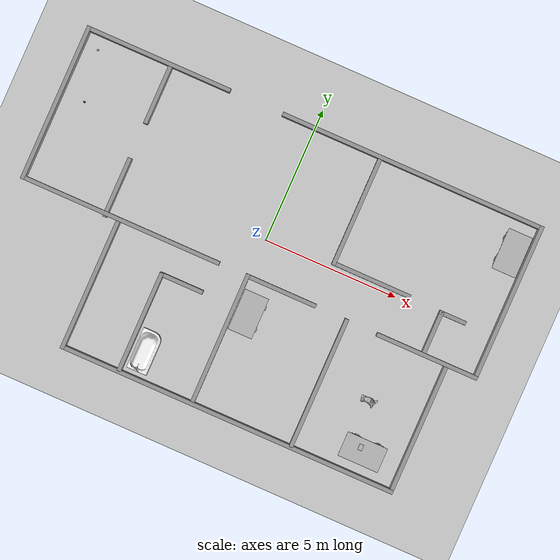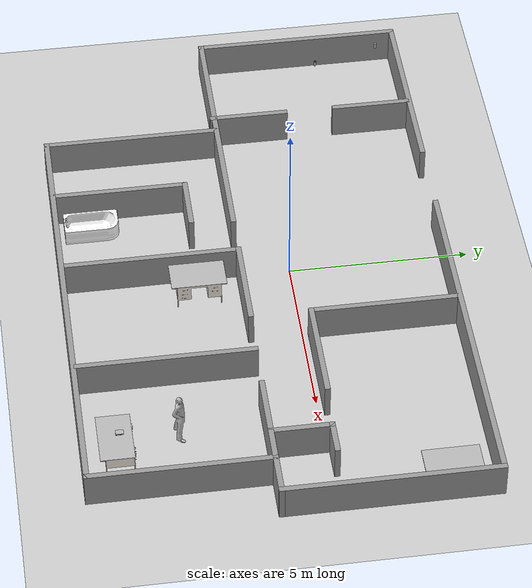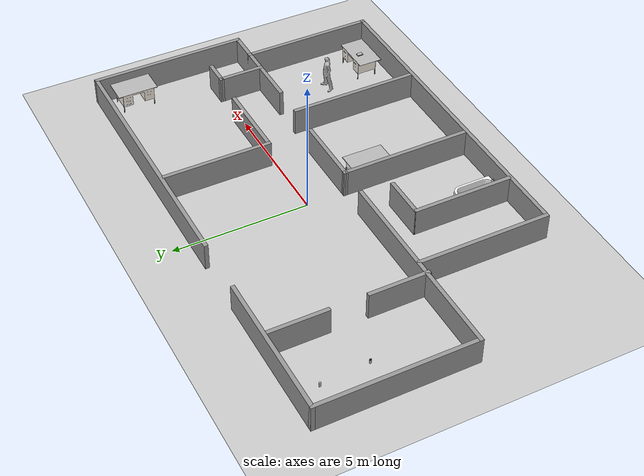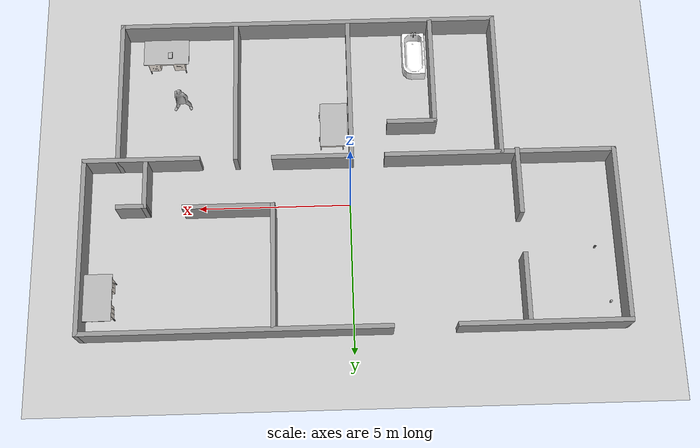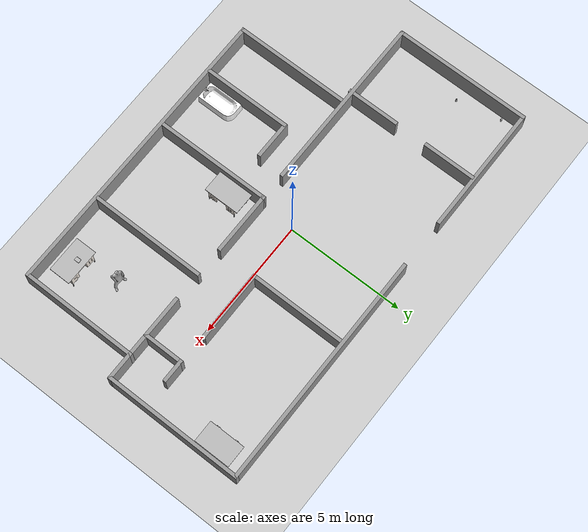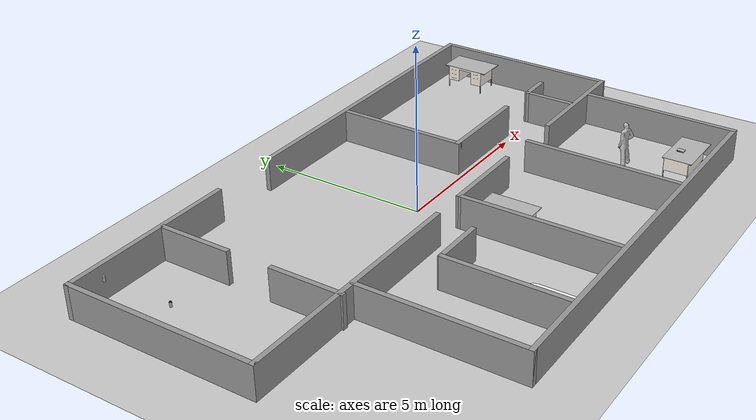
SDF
<sdf version="1.4">
 <world name="default">
  <include><uri>model://ground_plane</uri></include>
  <include><uri>model://sun</uri></include>
  <include><uri>model://home</uri><name>walls</name><pose>0 -1 0 0 0 0</pose><static>1</static></include>
  <include>
   <uri>model://Tub</uri>
   <name>tub1</name>
   <pose>-2.68 -6.05 0 0 0 -1.57</pose>
   <static>1</static>
  </include>
  <include>
   <uri>model://desk</uri>
   <name>desk1</name>
   <pose>8.00 3.06 0 0 0 -1.57</pose>
   <static>1</static>
  </include>
  <include>
   <uri>model://desk</uri>
   <name>desk2</name>
   <pose>0.59 -2.59 0 0 0 1.57</pose>
   <static>1</static>
  </include>
  <include>
   <uri>model://desk</uri>
   <name>desk3</name>
   <pose>6.10 -5.33 0 0 0 3.14159</pose>
   <static>1</static>
  </include>
  <include>
   <uri>model://human</uri>
   <name>jamie</name>
   <pose>5.6 -3.7 0 0 0 1.57</pose>
   <static>1</static>
  </include>
  <include><uri>model://book</uri><name>book1</name><pose>5.99 -5.30 0.74 0 0 0</pose></include>
  <include><uri>model://beer</uri><name>beer1</name><pose>-8.060 3.715 0.940 0 0 0</pose></include>
  <include><uri>model://bottle</uri><name>bottle1</name><pose>-7.769 1.867 0.710 0 0 0</pose></include>
 </world>
</sdf>

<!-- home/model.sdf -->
<sdf version='1.6'>
  <model name='home'>
    <pose frame=''>-0.127498 -0.471945 0 0 -0 0</pose>
    <link name='Wall_0'>
      <collision name='Wall_0_Collision'>
        <geometry>
          <box>
            <size>5.85 0.15 1.01</size>
          </box>
        </geometry>
        <pose frame=''>0 0 0.505 0 -0 0</pose>
      </collision>
      <visual name='Wall_0_Visual'>
        <pose frame=''>0 0 0.505 0 -0 0</pose>
        <geometry>
          <box>
            <size>5.85 0.15 1.01</size>
          </box>
        </geometry>
        <material>
          <script>
            <uri>file://media/materials/scripts/gazebo.material</uri>
            <name>Gazebo/Grey</name>
          </script>
          <ambient>1 1 1 1</ambient>
        </material>
      </visual>
      <pose frame=''>-8.6775 2.44195 0 0 0 -1.5708</pose>
    </link>
    <link name='Wall_10'>
      <collision name='Wall_10_Collision'>
        <geometry>
          <box>
            <size>3.75 0.15 1.01</size>
          </box>
        </geometry>
        <pose frame=''>0 0 0.505 0 -0 0</pose>
      </collision>
      <visual name='Wall_10_Visual'>
        <pose frame=''>0 0 0.505 0 -0 0</pose>
        <geometry>
          <box>
            <size>3.75 0.15 1.01</size>
          </box>
        </geometry>
        <material>
          <script>
            <uri>file://media/materials/scripts/gazebo.material</uri>
            <name>Gazebo/Grey</name>
          </script>
          <ambient>1 1 1 1</ambient>
        </material>
      </visual>
      <pose frame=''>-2.85846 -3.39925 0 0 -0 1.5708</pose>
    </link>
    <link name='Wall_11'>
      <collision name='Wall_11_Collision'>
        <geometry>
          <box>
            <size>1.65 0.15 1.01</size>
          </box>
        </geometry>
        <pose frame=''>0 0 0.505 0 -0 0</pose>
      </collision>
      <visual name='Wall_11_Visual'>
        <pose frame=''>0 0 0.505 0 -0 0</pose>
        <geometry>
          <box>
            <size>1.65 0.15 1.01</size>
          </box>
        </geometry>
        <material>
          <script>
            <uri>file://media/materials/scripts/gazebo.material</uri>
            <name>Gazebo/Grey</name>
          </script>
          <ambient>1 1 1 1</ambient>
        </material>
      </visual>
      <pose frame=''>-2.10 -1.57 0 0 -0 0</pose>
    </link>
    <link name='Wall_12'>
      <collision name='Wall_12_Collision'>
        <geometry>
          <box>
            <size>4.88874 0.15 1.01</size>
          </box>
        </geometry>
        <pose frame=''>0 0 0.505 0 -0 0</pose>
      </collision>
      <visual name='Wall_12_Visual'>
        <pose frame=''>0 0 0.505 0 -0 0</pose>
        <geometry>
          <box>
            <size>4.88874 0.15 1.01</size>
          </box>
        </geometry>
        <material>
          <script>
            <uri>file://media/materials/scripts/gazebo.material</uri>
            <name>Gazebo/Grey</name>
          </script>
          <ambient>1 1 1 1</ambient>
        </material>
      </visual>
      <pose frame=''>-0.066276 -2.77742 0 0 -0 1.57342</pose>
    </link>
    <link name='Wall_16'>
      <collision name='Wall_16_Collision'>
        <geometry>
          <box>
            <size>4.9 0.15 1.01</size>
          </box>
        </geometry>
        <pose frame=''>0 0 0.505 0 -0 0</pose>
      </collision>
      <visual name='Wall_16_Visual'>
        <pose frame=''>0 0 0.505 0 -0 0</pose>
        <geometry>
          <box>
            <size>4.9 0.15 1.01</size>
          </box>
        </geometry>
        <material>
          <script>
            <uri>file://media/materials/scripts/gazebo.material</uri>
            <name>Gazebo/Grey</name>
          </script>
          <ambient>1 1 1 1</ambient>
        </material>
      </visual>
      <pose frame=''>3.73529 -2.82425 0 0 -0 1.5708</pose>
    </link>
    <link name='Wall_18'>
      <collision name='Wall_18_Collision'>
        <geometry>
          <box>
            <size>3.85 0.15 1.01</size>
          </box>
        </geometry>
        <pose frame=''>0 0 0.505 0 -0 0</pose>
      </collision>
      <visual name='Wall_18_Visual'>
        <pose frame=''>0 0 0.505 0 -0 0</pose>
        <geometry>
          <box>
            <size>3.85 0.15 1.01</size>
          </box>
        </geometry>
        <material>
          <script>
            <uri>file://media/materials/scripts/gazebo.material</uri>
            <name>Gazebo/Grey</name>
          </script>
          <ambient>1 1 1 1</ambient>
        </material>
      </visual>
      <pose frame=''>6.82709 -0.44195 0 0 -0 0</pose>
    </link>
    <link name='Wall_2'>
      <collision name='Wall_2_Collision'>
        <geometry>
          <box>
            <size>7.6 0.15 1.01</size>
          </box>
        </geometry>
        <pose frame=''>0 0 0.505 0 -0 0</pose>
      </collision>
      <visual name='Wall_2_Visual'>
        <pose frame=''>0 0 0.505 0 -0 0</pose>
        <geometry>
          <box>
            <size>7.6 0.15 1.01</size>
          </box>
        </geometry>
        <material>
          <script>
            <uri>file://media/materials/scripts/gazebo.material</uri>
            <name>Gazebo/Grey</name>
          </script>
          <ambient>1 1 1 1</ambient>
        </material>
      </visual>
      <pose frame=''>-4.9525 -0.408055 0 0 -0 0</pose>
    </link>
    <link name='Wall_20'>
      <collision name='Wall_20_Collision'>
        <geometry>
          <box>
            <size>5.8839 0.15 1.01</size>
          </box>
        </geometry>
        <pose frame=''>0 0 0.505 0 -0 0</pose>
      </collision>
      <visual name='Wall_20_Visual'>
        <pose frame=''>0 0 0.505 0 -0 0</pose>
        <geometry>
          <box>
            <size>5.8839 0.15 1.01</size>
          </box>
        </geometry>
        <material>
          <script>
            <uri>file://media/materials/scripts/gazebo.material</uri>
            <name>Gazebo/Grey</name>
          </script>
          <ambient>1 1 1 1</ambient>
        </material>
      </visual>
      <pose frame=''>8.67729 2.425 0 0 -0 1.57072</pose>
    </link>
    <link name='Wall_22'>
      <collision name='Wall_22_Collision'>
        <geometry>
          <box>
            <size>10 0.15 1.01</size>
          </box>
        </geometry>
        <pose frame=''>0 0 0.505 0 -0 0</pose>
      </collision>
      <visual name='Wall_22_Visual'>
        <pose frame=''>0 0 0.505 0 -0 0</pose>
        <geometry>
          <box>
            <size>10 0.15 1.01</size>
          </box>
        </geometry>
        <material>
          <script>
            <uri>file://media/materials/scripts/gazebo.material</uri>
            <name>Gazebo/Grey</name>
          </script>
          <ambient>1 1 1 1</ambient>
        </material>
      </visual>
      <pose frame=''>3.7525 5.29195 0 0 -0 3.14159</pose>
    </link>
    <link name='Wall_24'>
      <collision name='Wall_24_Collision'>
        <geometry>
          <box>
            <size>5.5 0.15 1.01</size>
          </box>
        </geometry>
        <pose frame=''>0 0 0.505 0 -0 0</pose>
      </collision>
      <visual name='Wall_24_Visual'>
        <pose frame=''>0 0 0.505 0 -0 0</pose>
        <geometry>
          <box>
            <size>5.5 0.15 1.01</size>
          </box>
        </geometry>
        <material>
          <script>
            <uri>file://media/materials/scripts/gazebo.material</uri>
            <name>Gazebo/Grey</name>
          </script>
          <ambient>1 1 1 1</ambient>
        </material>
      </visual>
      <pose frame=''>-6.0025 5.29195 0 0 -0 0</pose>
    </link>
    <link name='Wall_26'>
      <collision name='Wall_26_Collision'>
        <geometry>
          <box>
            <size>1.75 0.15 1.01</size>
          </box>
        </geometry>
        <pose frame=''>0 0 0.505 0 -0 0</pose>
      </collision>
      <visual name='Wall_26_Visual'>
        <pose frame=''>0 0 0.505 0 -0 0</pose>
        <geometry>
          <box>
            <size>1.75 0.15 1.01</size>
          </box>
        </geometry>
        <material>
          <script>
            <uri>file://media/materials/scripts/gazebo.material</uri>
            <name>Gazebo/Grey</name>
          </script>
          <ambient>1 1 1 1</ambient>
        </material>
      </visual>
      <pose frame=''>6.67166 0.362175 0 0 0 -1.5706</pose>
    </link>
    <link name='Wall_28'>
      <collision name='Wall_28_Collision'>
        <geometry>
          <box>
            <size>1 0.15 1.01</size>
          </box>
        </geometry>
        <pose frame=''>0 0 0.505 0 -0 0</pose>
      </collision>
      <visual name='Wall_28_Visual'>
        <pose frame=''>0 0 0.505 0 -0 0</pose>
        <geometry>
          <box>
            <size>1 0.15 1.01</size>
          </box>
        </geometry>
        <material>
          <script>
            <uri>file://media/materials/scripts/gazebo.material</uri>
            <name>Gazebo/Grey</name>
          </script>
          <ambient>1 1 1 1</ambient>
        </material>
      </visual>
      <pose frame=''>7.0965 1.16195 0 0 -0 0</pose>
    </link>
    <link name='Wall_30'>
      <collision name='Wall_30_Collision'>
        <geometry>
          <box>
            <size>4.1 0.15 1.01</size>
          </box>
        </geometry>
        <pose frame=''>0 0 0.505 0 -0 0</pose>
      </collision>
      <visual name='Wall_30_Visual'>
        <pose frame=''>0 0 0.505 0 -0 0</pose>
        <geometry>
          <box>
            <size>4.1 0.15 1.01</size>
          </box>
        </geometry>
        <material>
          <script>
            <uri>file://media/materials/scripts/gazebo.material</uri>
            <name>Gazebo/Grey</name>
          </script>
          <ambient>1 1 1 1</ambient>
        </material>
      </visual>
      <pose frame=''>2.52218 3.20403 0 0 0 -1.5708</pose>
    </link>
    <link name='Wall_32'>
      <collision name='Wall_32_Collision'>
        <geometry>
          <box>
            <size>3 0.15 1.01</size>
          </box>
        </geometry>
        <pose frame=''>0 0 0.505 0 -0 0</pose>
      </collision>
      <visual name='Wall_32_Visual'>
        <pose frame=''>0 0 0.505 0 -0 0</pose>
        <geometry>
          <box>
            <size>3 0.15 1.01</size>
          </box>
        </geometry>
        <material>
          <script>
            <uri>file://media/materials/scripts/gazebo.material</uri>
            <name>Gazebo/Grey</name>
          </script>
          <ambient>1 1 1 1</ambient>
        </material>
      </visual>
      <pose frame=''>3.94719 1.22903 0 0 -0 0</pose>
    </link>
    <link name='Wall_34'>
      <collision name='Wall_34_Collision'>
        <geometry>
          <box>
            <size>2.25 0.15 1.01</size>
          </box>
        </geometry>
        <pose frame=''>0 0 0.505 0 -0 0</pose>
      </collision>
      <visual name='Wall_34_Visual'>
        <pose frame=''>0 0 0.505 0 -0 0</pose>
        <geometry>
          <box>
            <size>2.25 0.15 1.01</size>
          </box>
        </geometry>
        <material>
          <script>
            <uri>file://media/materials/scripts/gazebo.material</uri>
            <name>Gazebo/Grey</name>
          </script>
          <ambient>1 1 1 1</ambient>
        </material>
      </visual>
      <pose frame=''>-5.5115 4.15595 0 0 0 -1.5708</pose>
    </link>
    <link name='Wall_36'>
      <collision name='Wall_36_Collision'>
        <geometry>
          <box>
            <size>2.25 0.15 1.01</size>
          </box>
        </geometry>
        <pose frame=''>0 0 0.505 0 -0 0</pose>
      </collision>
      <visual name='Wall_36_Visual'>
        <pose frame=''>0 0 0.505 0 -0 0</pose>
        <geometry>
          <box>
            <size>2.25 0.15 1.01</size>
          </box>
        </geometry>
        <material>
          <script>
            <uri>file://media/materials/scripts/gazebo.material</uri>
            <name>Gazebo/Grey</name>
          </script>
          <ambient>1 1 1 1</ambient>
        </material>
      </visual>
      <pose frame=''>-5.51107 0.589792 0 0 -0 1.5708</pose>
    </link>
    <link name='Wall_4'>
      <collision name='Wall_4_Collision'>
        <geometry>
          <box>
            <size>2.7 0.15 1.01</size>
          </box>
        </geometry>
        <pose frame=''>0 0 0.505 0 -0 0</pose>
      </collision>
      <visual name='Wall_4_Visual'>
        <pose frame=''>0 0 0.505 0 -0 0</pose>
        <geometry>
          <box>
            <size>2.7 0.15 1.01</size>
          </box>
        </geometry>
        <material>
          <script>
            <uri>file://media/materials/scripts/gazebo.material</uri>
            <name>Gazebo/Grey</name>
          </script>
          <ambient>1 1 1 1</ambient>
        </material>
      </visual>
      <pose frame=''>1.2025 -0.408055 0 0 -0 0</pose>
    </link>
    <link name='Wall_6'>
      <collision name='Wall_6_Collision'>
        <geometry>
          <box>
            <size>5 0.15 1.01</size>
          </box>
        </geometry>
        <pose frame=''>0 0 0.505 0 -0 0</pose>
      </collision>
      <visual name='Wall_6_Visual'>
        <pose frame=''>0 0 0.505 0 -0 0</pose>
        <geometry>
          <box>
            <size>5 0.15 1.01</size>
          </box>
        </geometry>
        <material>
          <script>
            <uri>file://media/materials/scripts/gazebo.material</uri>
            <name>Gazebo/Grey</name>
          </script>
          <ambient>1 1 1 1</ambient>
        </material>
      </visual>
      <pose frame=''>-5 -2.86695 0 0 0 -1.5708</pose>
    </link>
    <link name='Wall_7'>
      <collision name='Wall_7_Collision'>
        <geometry>
          <box>
            <size>12.73 0.15 1.01</size>
          </box>
        </geometry>
        <pose frame=''>0 0 0.505 0 -0 0</pose>
      </collision>
      <visual name='Wall_7_Visual'>
        <pose frame=''>0 0 0.505 0 -0 0</pose>
        <geometry>
          <box>
            <size>12.73 0.15 1.01</size>
          </box>
        </geometry>
        <material>
          <script>
            <uri>file://media/materials/scripts/gazebo.material</uri>
            <name>Gazebo/Grey</name>
          </script>
          <ambient>1 1 1 1</ambient>
        </material>
      </visual>
      <pose frame=''>1.29 -5.29195 0 0 -0 0</pose>
    </link>
    <link name='Wall_8'>
      <collision name='Wall_8_Collision'>
        <geometry>
          <box>
            <size>5 0.15 1.01</size>
          </box>
        </geometry>
        <pose frame=''>0 0 0.505 0 -0 0</pose>
      </collision>
      <visual name='Wall_8_Visual'>
        <pose frame=''>0 0 0.505 0 -0 0</pose>
        <geometry>
          <box>
            <size>5 0.15 1.01</size>
          </box>
        </geometry>
        <material>
          <script>
            <uri>file://media/materials/scripts/gazebo.material</uri>
            <name>Gazebo/Grey</name>
          </script>
          <ambient>1 1 1 1</ambient>
        </material>
      </visual>
      <pose frame=''>7.58098 -2.86695 0 0 -0 1.5708</pose>
    </link>
    <static>1</static>
  </model>
</sdf>

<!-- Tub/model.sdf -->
<sdf version="1.4">
  <model name="Tub">
    <link name="Tub_link">
      <inertial>
        <pose>0 0 0 0 0 0</pose>
        <mass>0.08</mass>
      </inertial>

      <visual name="Tub_visual">
        <pose>0 0 0 0 0 0</pose>
        <geometry>
          <mesh>
            <uri>model://Tub/meshes/Tub.dae</uri>
          </mesh>
        </geometry>
      </visual>

      <collision name="Tub_collision">
        <pose>0 0 0 0 0 0</pose>
        <geometry>
          <mesh>
            <uri>model://Tub/meshes/Tub.dae</uri>
          </mesh>
        </geometry>
        <surface>
          <friction>
            <ode>
              <mu>0.8</mu>
              <mu2>0.8</mu2>
              <fdir1>0.0 0.0 0.0</fdir1>
              <slip1>0.01</slip1>
              <slip2>0.01</slip2>
            </ode>
          </friction>
        </surface>
      </collision>

    </link>
  </model>
</sdf>

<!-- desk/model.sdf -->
<sdf version="1.4">
  <model name="desk">
    <static>false</static>
    <link name="link">
      <collision name="collision">
<pose>-0.02 0.10 0.37 0 0 0</pose>
        <geometry>
	<box>
      	   <size>1.532 0.916 0.74</size>
	</box>
        </geometry>
      </collision>
      <visual name="visual">
        <geometry>
          <mesh>
            <uri>model://desk/meshes/desk.dae</uri>
          </mesh>
        </geometry>
      </visual>

    </link>
  </model>
</sdf>

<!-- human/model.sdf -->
<sdf version="1.4">
  <model name="human">
    <static>false</static>
    <link name="link">
      <collision name="collision">
        <pose>0 0 0.75 0 0 1.57</pose>
        <geometry>
          <box>
            <size>0.62 0.24 1.50</size>
          </box>
        </geometry>
      </collision>
      <visual name="visual">
        <pose>0 0 0 0 0 1.57</pose>
        <geometry>
          <mesh>
            <uri>model://human/meshes/human.dae</uri>
            <scale>0.30 0.30 0.30</scale>
          </mesh>
        </geometry>

      </visual>
    </link>
  </model>
</sdf>

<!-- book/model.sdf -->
<sdf version="1.4">
  <model name="book">
    <static>false</static>
    <link name="link">
      <inertial>
        <mass>0.390</mass>
        <inertia>
          <ixx>0.00058</ixx>
          <ixy>0</ixy>
          <ixz>0</ixz>
          <iyy>0.00058</iyy>
          <iyz>0</iyz>
          <izz>0.00019</izz>
        </inertia>
      </inertial>
      <collision name = "collision">
<pose>0 0 0.0205 0 0 0</pose>
        <geometry>
	<box>
      	   <size>0.16 0.22 0.041</size>
	</box>
        </geometry>
      </collision>
      <visual name="visual">
        <geometry>
          <mesh>
            <uri>model://book/meshes/book.dae</uri>
	    <scale>0.5 0.5 0.5</scale>
          </mesh>
        </geometry>
      </visual>
    </link>
  </model>
</sdf>

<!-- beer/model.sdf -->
<sdf version="1.5">
  <model name="beer">
    <link name="link">
      <pose>0 0 0.075 0 0 0</pose>
      <inertial>
        <mass>0.390</mass>
        <inertia>
          <ixx>0.00058</ixx>
          <ixy>0</ixy>
          <ixz>0</ixz>
          <iyy>0.00058</iyy>
          <iyz>0</iyz>
          <izz>0.00019</izz>
        </inertia>
      </inertial>
      <collision name="collision">
        <geometry>
          <cylinder>
            <radius>0.035000</radius>
            <length>0.150000</length>
          </cylinder>
        </geometry>
        <surface>
          <friction>
            <ode>
              <mu>500.000000</mu>
              <mu2>500.000000</mu2>
              <fdir1>0.000000 0.000000 0.000000</fdir1>
              <slip1>0.000000</slip1>
              <slip2>0.000000</slip2>
            </ode>
          </friction>
          <bounce>
            <restitution_coefficient>0.000000</restitution_coefficient>
            <threshold>100000.000000</threshold>
          </bounce>
          <contact>
            <ode>
              <soft_cfm>0.000000</soft_cfm>
              <soft_erp>0.200000</soft_erp>
              <kp>10000000.000000</kp>
              <kd>1.000000</kd>
              <max_vel>0.000000</max_vel>
              <min_depth>0.001000</min_depth>
            </ode>
          </contact>
        </surface>
      </collision>
      <visual name="visual">
        <geometry>
          <cylinder>
            <radius>0.035000</radius>
            <length>0.150000</length>
          </cylinder>
        </geometry>
        <material>
          <script>
            <uri>model://beer/materials/scripts</uri>
            <uri>model://beer/materials/textures</uri>
            <name>Beer/Diffuse</name>
          </script>
        </material>
      </visual>
    </link>
  </model>
</sdf>

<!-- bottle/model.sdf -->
<sdf version="1.4">
  <model name="bottle">
    <static>false</static>
    <link name="link">
      <inertial>
        <mass>0.390</mass>
        <inertia>
          <ixx>0.00058</ixx>
          <ixy>0</ixy>
          <ixz>0</ixz>
          <iyy>0.00058</iyy>
          <iyz>0</iyz>
          <izz>0.00019</izz>
        </inertia>
      </inertial>
      <collision name="collision">
	<pose>0 0 0.08 0 0 0</pose>
        <geometry>
          <cylinder>
            <radius>0.035</radius>
            <length>0.16</length>
          </cylinder>
        </geometry>
      </collision>
      <visual name="visual">
        <geometry>
          <mesh>
            <uri>model://bottle/meshes/WaterBottle.dae</uri>
	    <scale>0.020 0.020 0.020</scale>
          </mesh>
        </geometry>
	</visual>
    </link>
  </model>
</sdf>
